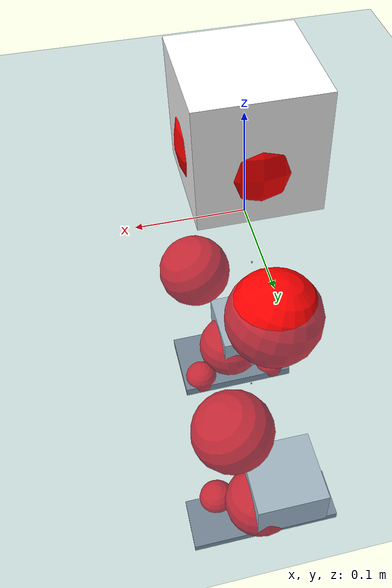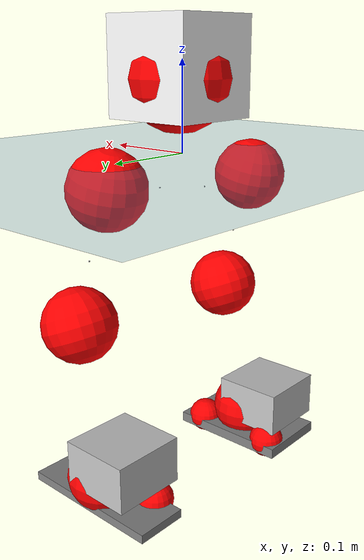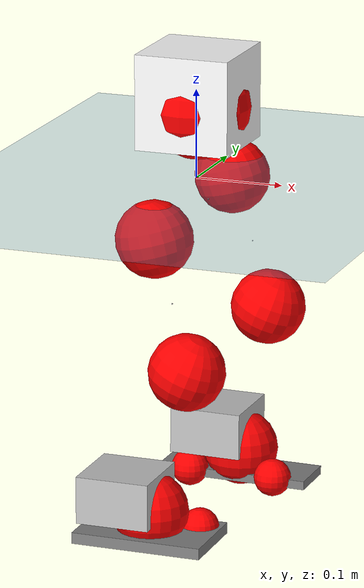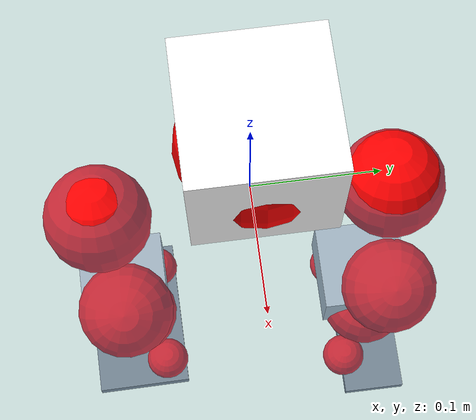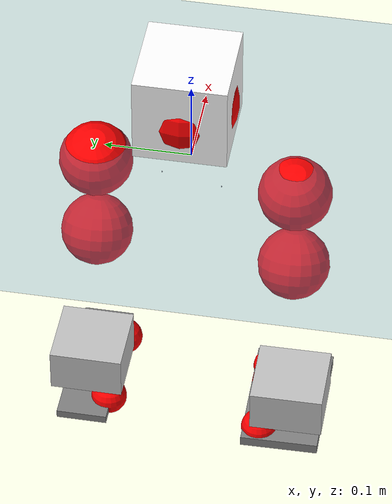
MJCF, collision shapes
<mujoco model="pi_12dof_release_v1">
  <compiler angle="radian" assetdir="assets" balanceinertia="true" inertiafromgeom="false"/>

  <option timestep="0.005" density="1.2" viscosity="2e-05"/>

  <size nkey="1"/>

  <visual>
    <quality shadowsize="8192"/>
    <map shadowclip="0.5"/>
  </visual>

  <default>
    <default class="/">
      <joint armature="0.01" damping="0.01" frictionloss="0.01"/>
      <geom contype="0" conaffinity="0" group="1" solref="-1000 -80"/>
      <site size="0.01 0.005 0.005" group="5"/>
      <general forcelimited="true" biastype="affine" gainprm="20" biasprm="0 -20 -0.5"/>
      <default class="foot">
        <geom size="0.0845 0.036 0.005" type="box" condim="6" group="4" priority="1" friction="0.9 0.2 0.2" solimp="0.015 1 0.005"/>
      </default>
      <default class="reward_collision_sphere">
        <geom group="5" rgba="1 0 0 1"/>
      </default>
    </default>
  </default>

  <asset>
    <texture type="skybox" colorspace="auto" name="//unnamed_texture_0" builtin="gradient" rgb1="0.95 0.95 0.95" rgb2="0.95 0.95 0.95" width="100" height="600"/>
    <texture type="2d" colorspace="auto" name="texplane" builtin="checker" rgb1="0.345 0.575 0.748" rgb2="0.345 0.575 0.748" markrgb="1 1 1" width="512" height="512"/>
    <material name="MatPlane" class="/" texture="texplane" texuniform="true" texrepeat="2 2" specular="0.9"/>
    <mesh name="baselink_1" class="/" file="baselink_1.STL"/>
    <mesh name="r_hip_pitch_link" class="/" file="r_hip_pitch_link.STL"/>
    <mesh name="r_hip_roll_link" class="/" file="r_hip_roll_link.STL"/>
    <mesh name="r_thigh_link" class="/" file="r_thigh_link.STL"/>
    <mesh name="r_calf_link" class="/" file="r_calf_link.STL"/>
    <mesh name="r_ankle_pitch_link" class="/" file="r_ankle_pitch_link.STL"/>
    <mesh name="r_ankle_roll_link" class="/" file="r_ankle_roll_link.STL"/>
    <mesh name="l_hip_pitch_link" class="/" file="l_hip_pitch_link.STL"/>
    <mesh name="l_hip_roll_link" class="/" file="l_hip_roll_link.STL"/>
    <mesh name="l_thigh_link" class="/" file="l_thigh_link.STL"/>
    <mesh name="l_calf_link" class="/" file="l_calf_link.STL"/>
    <mesh name="l_ankle_pitch_link" class="/" file="l_ankle_pitch_link.STL"/>
    <mesh name="l_ankle_roll_link" class="/" file="l_ankle_roll_link.STL"/>
  </asset>

  <worldbody>
    <geom name="floor" class="/" size="100 100 0.125" type="plane" group="0" material="MatPlane"/>
    <light name="toplight_shadow" class="/" pos="0 0 5" dir="0.0990148 0.0990148 -0.990148" type="directional" ambient="0.04 0.04 0.04" diffuse="0.55 0.55 0.55" specular="0.12 0.12 0.12"/>
    <light name="toplight_fill" class="/" pos="0 0 5" dir="0.0990148 0.0990148 -0.990148" type="directional" castshadow="false" ambient="0.04 0.04 0.04" diffuse="0.3 0.3 0.3" specular="0.08 0.08 0.08"/>
    <body name="trunk" pos="0.000254449 0.00442195 0.00210164" quat="1 3.35079e-05 7.74233e-05 4.74255e-05">
      <inertial pos="0.00287861 0.00501804 0.0451206" quat="0.692667 -0.0347347 0.0125112 0.720312" mass="2.69297" diaginertia="0.00229226 0.0393135 0.00731725"/>
      <joint name="//unnamed_joint_0" type="free"/>
      <geom name="//unnamed_geom_1" class="/" type="mesh" density="0" rgba="1 1 1 1" mesh="baselink_1"/>
      <geom name="//unnamed_geom_2" class="/" size="0.0534835 0.0534835 0.0534835" pos="0 0 0.0894731" type="box" rgba="1 1 1 1"/>
      <geom name="//unnamed_geom_3" class="reward_collision_sphere" size="0.0588319" pos="0 0 0.078289"/>
      <site name="imu" class="/" pos="-0.0205209 -0.009544 0.0220354" size="0.0106967"/>
      <camera name="track" class="/" pos="0 -2.6875 0" quat="0.707107 0.707107 0 0" mode="trackcom"/>
      <camera name="ego_camera" class="/" pos="0.0560137 0 0.201315" quat="-0.5 -0.5 0.5 0.5"/>
      <body name="r_hip_pitch_link" pos="-0.0028484 -0.0397422 -0.0436456" quat="0.992226 -0.00167613 -0.124427 0.00176242">
        <inertial pos="-0.00045686 -0.0747721 -0.0013744" quat="-0.0144231 0.712455 -0.0247575 0.701133" mass="0.470386" diaginertia="2.51972e-05 0.000463834 0.000142464"/>
        <joint name="r_hip_pitch_joint" class="/" pos="0 0 0" axis="-0.000432747 -1 0.000566939" stiffness="0.00438221" range="-1.75538 1.28362" armature="0.0112111" damping="0.0124079" frictionloss="0.00994034"/>
        <geom name="//unnamed_geom_4" class="/" type="mesh" density="0" rgba="0.75294 0.75294 0.75294 1" mesh="r_hip_pitch_link"/>
        <geom name="//unnamed_geom_5" class="/" size="0.000534835 0.000534835 0.000534835" type="box" rgba="0.75294 0.75294 0.75294 1"/>
        <body name="r_hip_roll_link" pos="0.000102495 -0.0848277 0.00301904" quat="0.999998 0.0010792 -0.000246412 0.00138413">
          <inertial pos="-0.00477519 -0.00193441 -0.0702343" quat="0.70461 -0.0543522 -0.0687737 0.70416" mass="0.475955" diaginertia="8.14571e-05 0.00123476 0.000227105"/>
          <joint name="r_hip_roll_joint" class="/" pos="0 0 0" axis="-0.999895 -0.00601918 -0.0131953" stiffness="0.0134946" range="-0.138388 0.394839" armature="0.0124313" damping="0.0624301" frictionloss="0.00966497"/>
          <geom name="//unnamed_geom_6" class="/" type="mesh" density="0" rgba="0.75294 0.75294 0.75294 1" mesh="r_hip_roll_link"/>
          <geom name="//unnamed_geom_7" class="/" size="0.000534835 0.000534835 0.000534835" type="box" rgba="0.75294 0.75294 0.75294 1"/>
          <geom name="//unnamed_geom_8" class="reward_collision_sphere" size="0.0427868"/>
          <body name="r_thigh_link" pos="-0.000690257 0.00684804 -0.0750657" quat="1 -0.000697284 0.000227114 0.000247018">
            <inertial pos="-0.00276239 0.00151305 -0.0451243" quat="0.736673 0.676248 0.000593123 0.001114" mass="0.133971" diaginertia="3.05067e-05 0.000376059 0.0001108"/>
            <joint name="r_thigh_joint" class="/" pos="0 0 0" axis="-0.000998539 -0.0127365 -0.999918" stiffness="0.00996869" range="-0.233008 0.581726" armature="0.0109636" damping="0.010091" frictionloss="0.0109224"/>
            <geom name="//unnamed_geom_9" class="/" type="mesh" density="0" rgba="0.75294 0.75294 0.75294 1" mesh="r_thigh_link"/>
            <geom name="//unnamed_geom_10" class="/" size="0.000534835 0.000534835 0.000534835" type="box" rgba="0.75294 0.75294 0.75294 1"/>
            <body name="r_calf_link" pos="-0.0012792 -0.00259076 -0.0770258" quat="0.947605 -9.47785e-05 0.319445 -0.000129397">
              <inertial pos="-0.000614943 0.000184226 -0.0765697" quat="0.99995 -0.00644052 -0.00758416 0.00075083" mass="1.09696" diaginertia="0.000830363 0.0174761 0.000294717"/>
              <joint name="r_calf_joint" class="/" pos="0 0 0" axis="0.00920118 -0.999955 0.0023907" stiffness="0.00597305" range="-1.82584 0.619161" armature="0.0100097" damping="0.00252273" frictionloss="0.0100735"/>
              <geom name="//unnamed_geom_11" class="/" type="mesh" density="0" rgba="0.75294 0.75294 0.75294 1" mesh="r_calf_link"/>
              <geom name="//unnamed_geom_12" class="/" size="0.000534835 0.000534835 0.000534835" type="box" rgba="0.75294 0.75294 0.75294 1"/>
              <geom name="//unnamed_geom_13" class="reward_collision_sphere" size="0.0427868"/>
              <body name="r_ankle_pitch_link" pos="-0.00712111 -0.00830487 -0.15919" quat="0.979966 0.000132272 -0.199166 0.000269598">
                <inertial pos="0.00463566 0.0130212 -0.00253463" quat="-0.00255595 0.700686 -0.00749619 0.713426" mass="0.192337" diaginertia="6.85516e-05 0.000905855 0.000195931"/>
                <joint name="r_ankle_pitch_joint" class="/" pos="0 0 0" axis="0.00984003 -0.999354 0.034559" stiffness="0.00530799" range="-1.31779 0.361204" armature="0.0115403" damping="0" frictionloss="0.01058"/>
                <geom name="//unnamed_geom_14" class="/" type="mesh" density="0" rgba="0.75294 0.75294 0.75294 1" mesh="r_ankle_pitch_link"/>
                <geom name="//unnamed_geom_15" class="/" size="0.0417171 0.0427868 0.0267418" type="box" rgba="0.75294 0.75294 0.75294 1"/>
                <body name="r_ankle_roll_link" pos="0.0638843 0.00705221 0.00286655" quat="0.999996 -0.00211686 0.00142557 0.001294">
                  <inertial pos="-0.0175644 0.000391201 -0.0194931" quat="0.566723 0.421025 0.436763 0.557495" mass="0.653659" diaginertia="0.000269232 0.00449995 0.000502065"/>
                  <joint name="r_ankle_roll_joint" class="/" pos="0 0 0" axis="-1 -0.000301689 -0.000444199" range="0.00640311 0.161321" armature="0.0108487" damping="0" frictionloss="0.0114086"/>
                  <geom name="//unnamed_geom_16" class="/" type="mesh" density="0" rgba="0.75294 0.75294 0.75294 1" mesh="r_ankle_roll_link"/>
                  <geom name="//unnamed_geom_17" class="/" type="mesh" rgba="0.75294 0.75294 0.75294 1" mesh="r_ankle_roll_link"/>
                  <geom name="right_foot" class="foot" size="0.0742598 0.0458399 0.00634286" pos="-0.0380893 0 -0.0492102"/>
                  <geom name="//unnamed_geom_19" class="reward_collision_sphere" size="0.0427868" pos="-0.0373425 0 -0.0223683"/>
                  <geom name="//unnamed_geom_20" class="reward_collision_sphere" size="0.0213934" pos="0.0112027 0.026875 -0.0447366"/>
                  <geom name="//unnamed_geom_21" class="reward_collision_sphere" size="0.0213934" pos="-0.0896219 0.026875 -0.0447366"/>
                  <site name="right_foot" class="foot" pos="-0.0380893 0 -0.0492102" size="0.0106967"/>
                </body>
              </body>
            </body>
          </body>
        </body>
      </body>
      <body name="l_hip_pitch_link" pos="0.00135902 0.0300108 -0.0353041" quat="0.992229 3.49983e-05 -0.124428 7.6712e-05">
        <inertial pos="0.000881902 0.0782018 -0.00181578" quat="-0.035936 0.7082 0.0318322 0.704378" mass="0.480786" diaginertia="2.94816e-05 0.000458591 0.000175549"/>
        <joint name="l_hip_pitch_joint" class="/" pos="0 0 0" axis="-0.00101593 0.999997 -0.0023557" range="-1.24611 1.74525" armature="0.00991129" damping="0.028735" frictionloss="0.00903993"/>
        <geom name="//unnamed_geom_22" class="/" type="mesh" density="0" rgba="0.75294 0.75294 0.75294 1" mesh="l_hip_pitch_link"/>
        <geom name="//unnamed_geom_23" class="/" size="0.000534835 0.000534835 0.000534835" type="box" rgba="0.75294 0.75294 0.75294 1"/>
        <body name="l_hip_roll_link" pos="0.00233511 0.0762304 0.0078046" quat="1 -0.000368979 0.000133941 -5.95649e-05">
          <inertial pos="0.00300677 -0.00190818 -0.0607437" quat="0.696426 -0.0751848 -0.0877484 0.708265" mass="0.424862" diaginertia="7.6359e-05 0.00121401 0.000219438"/>
          <joint name="l_hip_roll_joint" class="/" pos="0 0 0" axis="-0.999719 -0.00749819 0.0224677" stiffness="0.0013174" range="-0.35759 0.123821" armature="0.00802005" damping="0.0126849" frictionloss="0.010785"/>
          <geom name="//unnamed_geom_24" class="/" type="mesh" density="0" rgba="0.75294 0.75294 0.75294 1" mesh="l_hip_roll_link"/>
          <geom name="//unnamed_geom_25" class="/" size="0.000534835 0.000534835 0.000534835" type="box" rgba="0.75294 0.75294 0.75294 1"/>
          <geom name="//unnamed_geom_26" class="reward_collision_sphere" size="0.0427868"/>
          <body name="l_thigh_link" pos="0.00202721 0.00855919 -0.0796113" quat="1 0.000348713 0.000216441 0.000323332">
            <inertial pos="-0.000469539 -0.00256097 -0.0559673" quat="0.677358 0.735605 1.54426e-07 0.00846257" mass="0.129933" diaginertia="2.61438e-05 0.000393759 9.76024e-05"/>
            <joint name="l_thigh_joint" class="/" pos="0 0 0" axis="0.00034075 0.000572847 -1" range="-0.562387 0.289717" armature="0.0120949" damping="0" frictionloss="0.0110653"/>
            <geom name="//unnamed_geom_27" class="/" type="mesh" density="0" rgba="0.75294 0.75294 0.75294 1" mesh="l_thigh_link"/>
            <geom name="//unnamed_geom_28" class="/" size="0.000534835 0.000534835 0.000534835" type="box" rgba="0.75294 0.75294 0.75294 1"/>
            <body name="l_calf_link" pos="-0.000580881 0.00127073 -0.0784313" quat="0.947672 0.00109705 0.319232 -0.00260965">
              <inertial pos="0.00142794 -0.000365975 -0.0750721" quat="0.999933 0.00876067 -0.00425125 0.0062455" mass="0.991261" diaginertia="0.00075669 0.0149844 0.000272547"/>
              <joint name="l_calf_joint" class="/" pos="0 0 0" axis="-0.00487313 0.999902 0.0131376" range="-0.618635 1.65531" armature="0.0112471" damping="0.0132099" frictionloss="0.0109176"/>
              <geom name="//unnamed_geom_29" class="/" type="mesh" density="0" rgba="0.75294 0.75294 0.75294 1" mesh="l_calf_link"/>
              <geom name="//unnamed_geom_30" class="/" size="0.000534835 0.000534835 0.000534835" type="box" rgba="0.75294 0.75294 0.75294 1"/>
              <geom name="//unnamed_geom_31" class="reward_collision_sphere" size="0.0427868"/>
              <body name="l_ankle_pitch_link" pos="0.00159789 -0.00335381 -0.157757" quat="0.980459 -0.00231448 -0.196709 -0.00079354">
                <inertial pos="0.0044462 0.00533232 -0.00212239" quat="-0.00559345 0.710404 -0.00380978 0.703762" mass="0.226039" diaginertia="7.54067e-05 0.00101604 0.000215637"/>
                <joint name="l_ankle_pitch_joint" class="/" pos="0 0 0" axis="-0.00240264 0.999976 0.00654251" range="-0.413898 1.25028" armature="0.0118447" damping="0.0147114" frictionloss="0.0107069"/>
                <geom name="//unnamed_geom_32" class="/" type="mesh" density="0" rgba="0.75294 0.75294 0.75294 1" mesh="l_ankle_pitch_link"/>
                <geom name="//unnamed_geom_33" class="/" size="0.0417171 0.0427868 0.0267418" type="box" rgba="0.75294 0.75294 0.75294 1"/>
                <body name="l_ankle_roll_link" pos="0.0653063 0.00246977 -0.00390423" quat="1 -0.000254278 -1.37852e-05 -0.000372519">
                  <inertial pos="-0.0267252 0.000583094 -0.0172316" quat="0.559845 0.43089 0.434319 0.558816" mass="0.623929" diaginertia="0.00024288 0.00449451 0.000510248"/>
                  <joint name="l_ankle_roll_joint" class="/" pos="0 0 0" axis="-0.999165 0.0380262 -0.0149169" stiffness="0.000786725" range="-0.314148 0.234896" armature="0.00725029" damping="0" frictionloss="0.0136768"/>
                  <geom name="//unnamed_geom_34" class="/" type="mesh" density="0" rgba="0.75294 0.75294 0.75294 1" mesh="l_ankle_roll_link"/>
                  <geom name="//unnamed_geom_35" class="/" type="mesh" rgba="0.75294 0.75294 0.75294 1" mesh="l_ankle_roll_link"/>
                  <geom name="left_foot" class="foot" size="0.0882044 0.0299745 0.00508489" pos="-0.0380893 0 -0.0492102"/>
                  <geom name="//unnamed_geom_37" class="reward_collision_sphere" size="0.0427868" pos="-0.0373425 0 -0.0223683"/>
                  <geom name="//unnamed_geom_38" class="reward_collision_sphere" size="0.0213934" pos="0.0112027 -0.026875 -0.0447366"/>
                  <geom name="//unnamed_geom_39" class="reward_collision_sphere" size="0.0213934" pos="-0.0896219 -0.026875 -0.0447366"/>
                  <site name="left_foot" class="foot" pos="-0.0380893 0 -0.0492102" size="0.0106967"/>
                </body>
              </body>
            </body>
          </body>
        </body>
      </body>
    </body>
  </worldbody>

  <contact>
    <pair class="/" geom1="floor" geom2="right_foot" name="//unnamed_contact_1"/>
    <pair class="/" geom1="floor" geom2="left_foot" name="//unnamed_contact_0"/>
  </contact>

  <actuator>
    <general name="r_hip_pitch_joint" class="/" joint="r_hip_pitch_joint" forcerange="-21.4713 21.4713" gainprm="22.583" biasprm="0 -22.583 -0.537149"/>
    <general name="r_hip_roll_joint" class="/" joint="r_hip_roll_joint" forcerange="-21.9828 21.9828" gainprm="22.583" biasprm="0 -22.583 -0.537149"/>
    <general name="r_thigh_joint" class="/" joint="r_thigh_joint" forcerange="-19.8317 19.8317" gainprm="22.583" biasprm="0 -22.583 -0.537149"/>
    <general name="r_calf_joint" class="/" joint="r_calf_joint" forcerange="-27.5277 27.5277" gainprm="22.583" biasprm="0 -22.583 -0.537149"/>
    <general name="r_ankle_pitch_joint" class="/" joint="r_ankle_pitch_joint" forcerange="-16.5519 16.5519" gainprm="22.583" biasprm="0 -22.583 -0.537149"/>
    <general name="r_ankle_roll_joint" class="/" joint="r_ankle_roll_joint" forcerange="-16.4805 16.4805" gainprm="22.583" biasprm="0 -22.583 -0.537149"/>
    <general name="l_hip_pitch_joint" class="/" joint="l_hip_pitch_joint" forcerange="-15.1661 15.1661" gainprm="22.583" biasprm="0 -22.583 -0.537149"/>
    <general name="l_hip_roll_joint" class="/" joint="l_hip_roll_joint" forcerange="-25.1224 25.1224" gainprm="22.583" biasprm="0 -22.583 -0.537149"/>
    <general name="l_thigh_joint" class="/" joint="l_thigh_joint" forcerange="-21.7091 21.7091" gainprm="22.583" biasprm="0 -22.583 -0.537149"/>
    <general name="l_calf_joint" class="/" joint="l_calf_joint" forcerange="-16.5309 16.5309" gainprm="22.583" biasprm="0 -22.583 -0.537149"/>
    <general name="l_ankle_pitch_joint" class="/" joint="l_ankle_pitch_joint" forcerange="-16.503 16.503" gainprm="22.583" biasprm="0 -22.583 -0.537149"/>
    <general name="l_ankle_roll_joint" class="/" joint="l_ankle_roll_joint" forcerange="-19.9597 19.9597" gainprm="22.583" biasprm="0 -22.583 -0.537149"/>
  </actuator>

  <sensor>
    <gyro site="imu" name="imu_angular_velocity"/>
    <velocimeter site="imu" name="imu_linear_velocity"/>
    <framelinvel objtype="site" objname="left_foot" name="left_foot_global_linear_velocity"/>
    <framelinvel objtype="site" objname="right_foot" name="right_foot_global_linear_velocity"/>
  </sensor>

  <keyframe>
    <key name="home" qpos="0 0 0.291 1 0 0 0 0.4 0 0 -0.8 0.4 0 -0.4 0 0 0.8 -0.4 0"/>
  </keyframe>
</mujoco>
